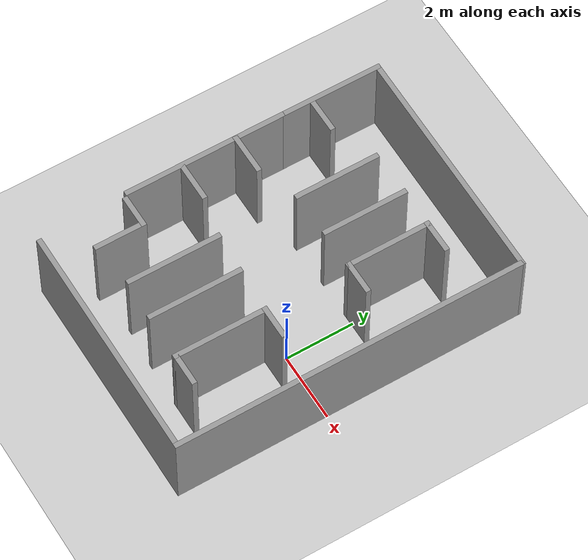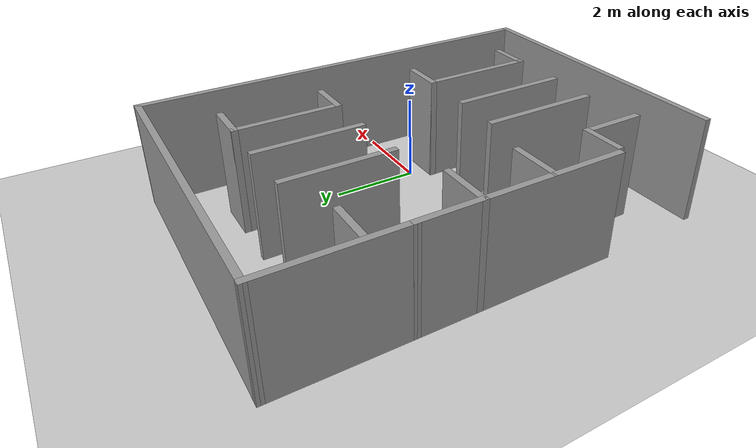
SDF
<sdf version='1.4'>
  <world name='default'>
    <!-- A global light source -->
    <include>
      <uri>model://sun</uri>
    </include>

    <!-- A ground plane -->
    <include>
      <uri>model://ground_plane</uri>
    </include>

    <physics type="ode">
      <real_time_update_rate>2000.0</real_time_update_rate>
      <max_step_size>0.002</max_step_size>
      <real_time_factor>2</real_time_factor>
      <ode>
        <solver>
          <type>quick</type>
          <iters>150</iters>
          <precon_iters>0</precon_iters>
          <sor>1.400000</sor>
          <use_dynamic_moi_rescaling>1</use_dynamic_moi_rescaling>
        </solver>
        <constraints>
          <cfm>0.00001</cfm>
          <erp>0.2</erp>
          <contact_max_correcting_vel>2000.000000</contact_max_correcting_vel>
          <contact_surface_layer>0.01000</contact_surface_layer>
        </constraints>
      </ode>
    </physics>

    <include>
        <uri>model://turtlebot3_rs2warehouse</uri>
    </include>

    <scene>
      <ambient>0.4 0.4 0.4 1</ambient>
      <background>0.7 0.7 0.7 1</background>
      <shadows>true</shadows>
    </scene>

    <gui fullscreen='0'>
      <camera name='user_camera'>
        <pose>0.0 0.0 17.0 0 1.5708 0</pose>
        <view_controller>orbit</view_controller>
      </camera>
    </gui>
  </world>
</sdf>

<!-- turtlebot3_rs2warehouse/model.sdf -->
<sdf version='1.6'>
  <model name='warehouse'>
    <pose frame=''>-1.58128 0.77442 0 0 -0 0</pose>
    <link name='Wall_0'>
      <collision name='Wall_0_Collision'>
        <geometry>
          <box>
            <size>7 0.15 2.5</size>
          </box>
        </geometry>
        <pose frame=''>0 0 1.25 0 -0 0</pose>
      </collision>
      <visual name='Wall_0_Visual'>
        <pose frame=''>0 0 1.25 0 -0 0</pose>
        <geometry>
          <box>
            <size>7 0.15 2.5</size>
          </box>
        </geometry>
        <material>
          <script>
            <uri>file://media/materials/scripts/gazebo.material</uri>
            <name>Gazebo/Grey</name>
          </script>
          <ambient>1 1 1 1</ambient>
        </material>
        <meta>
          <layer>0</layer>
        </meta>
      </visual>
      <pose frame=''>0.066277 -5.08442 0 0 -0 3.14159</pose>
    </link>
    <link name='Wall_10'>
      <collision name='Wall_10_Collision'>
        <geometry>
          <box>
            <size>1.25 0.15 2.5</size>
          </box>
        </geometry>
        <pose frame=''>0 0 1.25 0 -0 0</pose>
      </collision>
      <visual name='Wall_10_Visual'>
        <pose frame=''>0 0 1.25 0 -0 0</pose>
        <geometry>
          <box>
            <size>1.25 0.15 2.5</size>
          </box>
        </geometry>
        <material>
          <script>
            <uri>file://media/materials/scripts/gazebo.material</uri>
            <name>Gazebo/Grey</name>
          </script>
          <ambient>1 1 1 1</ambient>
        </material>
        <meta>
          <layer>0</layer>
        </meta>
      </visual>
      <pose frame=''>-2.94179 -0.847203 0 0 -0 0</pose>
    </link>
    <link name='Wall_12'>
      <collision name='Wall_12_Collision'>
        <geometry>
          <box>
            <size>2.5 0.15 2.5</size>
          </box>
        </geometry>
        <pose frame=''>0 0 1.25 0 -0 0</pose>
      </collision>
      <visual name='Wall_12_Visual'>
        <pose frame=''>0 0 1.25 0 -0 0</pose>
        <geometry>
          <box>
            <size>2.5 0.15 2.5</size>
          </box>
        </geometry>
        <material>
          <script>
            <uri>file://media/materials/scripts/gazebo.material</uri>
            <name>Gazebo/Grey</name>
          </script>
          <ambient>1 1 1 1</ambient>
        </material>
        <meta>
          <layer>0</layer>
        </meta>
      </visual>
      <pose frame=''>-1.14537 2.38746 0 0 -0 -1.5708</pose>
    </link>
    <link name='Wall_14'>
      <collision name='Wall_14_Collision'>
        <geometry>
          <box>
            <size>2.5 0.15 2.5</size>
          </box>
        </geometry>
        <pose frame=''>0 0 1.25 0 -0 0</pose>
      </collision>
      <visual name='Wall_14_Visual'>
        <pose frame=''>0 0 1.25 0 -0 0</pose>
        <geometry>
          <box>
            <size>2.5 0.15 2.5</size>
          </box>
        </geometry>
        <material>
          <script>
            <uri>file://media/materials/scripts/gazebo.material</uri>
            <name>Gazebo/Grey</name>
          </script>
          <ambient>1 1 1 1</ambient>
        </material>
        <meta>
          <layer>0</layer>
        </meta>
      </visual>
      <pose frame=''>0.14921 2.42791 0 0 -0 -1.5708</pose>
    </link>
    <link name='Wall_16'>
      <collision name='Wall_16_Collision'>
        <geometry>
          <box>
            <size>2.5 0.15 2.5</size>
          </box>
        </geometry>
        <pose frame=''>0 0 1.25 0 -0 0</pose>
      </collision>
      <visual name='Wall_16_Visual'>
        <pose frame=''>0 0 1.25 0 -0 0</pose>
        <geometry>
          <box>
            <size>2.5 0.15 2.5</size>
          </box>
        </geometry>
        <material>
          <script>
            <uri>file://media/materials/scripts/gazebo.material</uri>
            <name>Gazebo/Grey</name>
          </script>
          <ambient>1 1 1 1</ambient>
        </material>
        <meta>
          <layer>0</layer>
        </meta>
      </visual>
      <pose frame=''>1.28197 2.42791 0 0 -0 -1.5708</pose>
    </link>
    <link name='Wall_25'>
      <collision name='Wall_25_Collision'>
        <geometry>
          <box>
            <size>1 0.15 2.5</size>
          </box>
        </geometry>
        <pose frame=''>0 0 1.25 0 -0 0</pose>
      </collision>
      <visual name='Wall_25_Visual'>
        <pose frame=''>0 0 1.25 0 -0 0</pose>
        <geometry>
          <box>
            <size>1 0.15 2.5</size>
          </box>
        </geometry>
        <material>
          <script>
            <uri>file://media/materials/scripts/gazebo.material</uri>
            <name>Gazebo/Grey</name>
          </script>
          <ambient>1 1 1 1</ambient>
        </material>
        <meta>
          <layer>0</layer>
        </meta>
      </visual>
      <pose frame=''>-2.90497 -2.58679 0 0 -0 0</pose>
    </link>
    <link name='Wall_26'>
      <collision name='Wall_26_Collision'>
        <geometry>
          <box>
            <size>1.5 0.15 2.5</size>
          </box>
        </geometry>
        <pose frame=''>0 0 1.25 0 -0 0</pose>
      </collision>
      <visual name='Wall_26_Visual'>
        <pose frame=''>0 0 1.25 0 -0 0</pose>
        <geometry>
          <box>
            <size>1.5 0.15 2.5</size>
          </box>
        </geometry>
        <material>
          <script>
            <uri>file://media/materials/scripts/gazebo.material</uri>
            <name>Gazebo/Grey</name>
          </script>
          <ambient>1 1 1 1</ambient>
        </material>
        <meta>
          <layer>0</layer>
        </meta>
      </visual>
      <pose frame=''>-2.47997 -3.26179 0 0 -0 -1.5708</pose>
    </link>
    <link name='Wall_28'>
      <collision name='Wall_28_Collision'>
        <geometry>
          <box>
            <size>4.75 0.15 2.5</size>
          </box>
        </geometry>
        <pose frame=''>0 0 1.25 0 -0 0</pose>
      </collision>
      <visual name='Wall_28_Visual'>
        <pose frame=''>0 0 1.25 0 -0 0</pose>
        <geometry>
          <box>
            <size>4.75 0.15 2.5</size>
          </box>
        </geometry>
        <material>
          <script>
            <uri>file://media/materials/scripts/gazebo.material</uri>
            <name>Gazebo/Grey</name>
          </script>
          <ambient>1 1 1 1</ambient>
        </material>
        <meta>
          <layer>0</layer>
        </meta>
      </visual>
      <pose frame=''>-3.49179 -0.15349 0 0 -0 -1.5708</pose>
    </link>
    <link name='Wall_30'>
      <collision name='Wall_30_Collision'>
        <geometry>
          <box>
            <size>2.75 0.15 2.5</size>
          </box>
        </geometry>
        <pose frame=''>0 0 1.25 0 -0 0</pose>
      </collision>
      <visual name='Wall_30_Visual'>
        <pose frame=''>0 0 1.25 0 -0 0</pose>
        <geometry>
          <box>
            <size>2.75 0.15 2.5</size>
          </box>
        </geometry>
        <material>
          <script>
            <uri>file://media/materials/scripts/gazebo.material</uri>
            <name>Gazebo/Grey</name>
          </script>
          <ambient>1 1 1 1</ambient>
        </material>
        <meta>
          <layer>0</layer>
        </meta>
      </visual>
      <pose frame=''>-1.16972 -2.43899 0 0 -0 -1.5708</pose>
    </link>
    <link name='Wall_32'>
      <collision name='Wall_32_Collision'>
        <geometry>
          <box>
            <size>2.75 0.15 2.5</size>
          </box>
        </geometry>
        <pose frame=''>0 0 1.25 0 -0 0</pose>
      </collision>
      <visual name='Wall_32_Visual'>
        <pose frame=''>0 0 1.25 0 -0 0</pose>
        <geometry>
          <box>
            <size>2.75 0.15 2.5</size>
          </box>
        </geometry>
        <material>
          <script>
            <uri>file://media/materials/scripts/gazebo.material</uri>
            <name>Gazebo/Grey</name>
          </script>
          <ambient>1 1 1 1</ambient>
        </material>
        <meta>
          <layer>0</layer>
        </meta>
      </visual>
      <pose frame=''>-0.007293 -2.50017 0 0 -0 -1.5708</pose>
    </link>
    <link name='Wall_34'>
      <collision name='Wall_34_Collision'>
        <geometry>
          <box>
            <size>2.75 0.15 2.5</size>
          </box>
        </geometry>
        <pose frame=''>0 0 1.25 0 -0 0</pose>
      </collision>
      <visual name='Wall_34_Visual'>
        <pose frame=''>0 0 1.25 0 -0 0</pose>
        <geometry>
          <box>
            <size>2.75 0.15 2.5</size>
          </box>
        </geometry>
        <material>
          <script>
            <uri>file://media/materials/scripts/gazebo.material</uri>
            <name>Gazebo/Grey</name>
          </script>
          <ambient>1 1 1 1</ambient>
        </material>
        <meta>
          <layer>0</layer>
        </meta>
      </visual>
      <pose frame=''>1.30809 -2.53076 0 0 -0 -1.5708</pose>
    </link>
    <link name='Wall_36'>
      <collision name='Wall_36_Collision'>
        <geometry>
          <box>
            <size>1 0.15 2.5</size>
          </box>
        </geometry>
        <pose frame=''>0 0 1.25 0 -0 0</pose>
      </collision>
      <visual name='Wall_36_Visual'>
        <pose frame=''>0 0 1.25 0 -0 0</pose>
        <geometry>
          <box>
            <size>1 0.15 2.5</size>
          </box>
        </geometry>
        <material>
          <script>
            <uri>file://media/materials/scripts/gazebo.material</uri>
            <name>Gazebo/Grey</name>
          </script>
          <ambient>1 1 1 1</ambient>
        </material>
        <meta>
          <layer>0</layer>
        </meta>
      </visual>
      <pose frame=''>1.73309 -1.23076 0 0 -0 0</pose>
    </link>
    <link name='Wall_39'>
      <collision name='Wall_39_Collision'>
        <geometry>
          <box>
            <size>1 0.15 2.5</size>
          </box>
        </geometry>
        <pose frame=''>0 0 1.25 0 -0 0</pose>
      </collision>
      <visual name='Wall_39_Visual'>
        <pose frame=''>0 0 1.25 0 -0 0</pose>
        <geometry>
          <box>
            <size>1 0.15 2.5</size>
          </box>
        </geometry>
        <material>
          <script>
            <uri>file://media/materials/scripts/gazebo.material</uri>
            <name>Gazebo/Grey</name>
          </script>
          <ambient>1 1 1 1</ambient>
        </material>
        <meta>
          <layer>0</layer>
        </meta>
      </visual>
      <pose frame=''>1.73309 -3.83076 0 0 -0 0</pose>
    </link>
    <link name='Wall_41'>
      <collision name='Wall_41_Collision'>
        <geometry>
          <box>
            <size>1 0.15 2.5</size>
          </box>
        </geometry>
        <pose frame=''>0 0 1.25 0 -0 0</pose>
      </collision>
      <visual name='Wall_41_Visual'>
        <pose frame=''>0 0 1.25 0 -0 0</pose>
        <geometry>
          <box>
            <size>1 0.15 2.5</size>
          </box>
        </geometry>
        <material>
          <script>
            <uri>file://media/materials/scripts/gazebo.material</uri>
            <name>Gazebo/Grey</name>
          </script>
          <ambient>1 1 1 1</ambient>
        </material>
        <meta>
          <layer>0</layer>
        </meta>
      </visual>
      <pose frame=''>1.70697 1.25291 0 0 -0 0</pose>
    </link>
    <link name='Wall_43'>
      <collision name='Wall_43_Collision'>
        <geometry>
          <box>
            <size>1 0.15 2.5</size>
          </box>
        </geometry>
        <pose frame=''>0 0 1.25 0 -0 0</pose>
      </collision>
      <visual name='Wall_43_Visual'>
        <pose frame=''>0 0 1.25 0 -0 0</pose>
        <geometry>
          <box>
            <size>1 0.15 2.5</size>
          </box>
        </geometry>
        <material>
          <script>
            <uri>file://media/materials/scripts/gazebo.material</uri>
            <name>Gazebo/Grey</name>
          </script>
          <ambient>1 1 1 1</ambient>
        </material>
        <meta>
          <layer>0</layer>
        </meta>
      </visual>
      <pose frame=''>1.70697 3.60291 0 0 -0 0</pose>
    </link>
    <link name='Wall_45'>
      <collision name='Wall_45_Collision'>
        <geometry>
          <box>
            <size>3.08719 0.15 2.5</size>
          </box>
        </geometry>
        <pose frame=''>0 0 1.25 0 -0 0</pose>
      </collision>
      <visual name='Wall_45_Visual'>
        <pose frame=''>0 0 1.25 0 -0 0</pose>
        <geometry>
          <box>
            <size>3.08719 0.15 2.5</size>
          </box>
        </geometry>
        <material>
          <script>
            <uri>file://media/materials/scripts/gazebo.material</uri>
            <name>Gazebo/Grey</name>
          </script>
          <ambient>1 1 1 1</ambient>
        </material>
        <meta>
          <layer>0</layer>
        </meta>
      </visual>
      <pose frame=''>-3.4876 3.6151 0 0 -0 -1.57365</pose>
    </link>
    <link name='Wall_47'>
      <collision name='Wall_47_Collision'>
        <geometry>
          <box>
            <size>1 0.15 2.5</size>
          </box>
        </geometry>
        <pose frame=''>0 0 1.25 0 -0 0</pose>
      </collision>
      <visual name='Wall_47_Visual'>
        <pose frame=''>0 0 1.25 0 -0 0</pose>
        <geometry>
          <box>
            <size>1 0.15 2.5</size>
          </box>
        </geometry>
        <material>
          <script>
            <uri>file://media/materials/scripts/gazebo.material</uri>
            <name>Gazebo/Grey</name>
          </script>
          <ambient>1 1 1 1</ambient>
        </material>
        <meta>
          <layer>0</layer>
        </meta>
      </visual>
      <pose frame=''>-2.91663 3.05187 0 0 -0 0</pose>
    </link>
    <link name='Wall_5'>
      <collision name='Wall_5_Collision'>
        <geometry>
          <box>
            <size>10.25 0.15 2.5</size>
          </box>
        </geometry>
        <pose frame=''>0 0 1.25 0 -0 0</pose>
      </collision>
      <visual name='Wall_5_Visual'>
        <pose frame=''>0 0 1.25 0 -0 0</pose>
        <geometry>
          <box>
            <size>10.25 0.15 2.5</size>
          </box>
        </geometry>
        <material>
          <script>
            <uri>file://media/materials/scripts/gazebo.material</uri>
            <name>Gazebo/Grey</name>
          </script>
          <ambient>1 1 1 1</ambient>
        </material>
        <meta>
          <layer>0</layer>
        </meta>
      </visual>
      <pose frame=''>3.49128 -0.03442 0 0 -0 1.5708</pose>
    </link>
    <link name='Wall_6'>
      <collision name='Wall_6_Collision'>
        <geometry>
          <box>
            <size>7.12502 0.15 2.5</size>
          </box>
        </geometry>
        <pose frame=''>0 0 1.25 0 -0 0</pose>
      </collision>
      <visual name='Wall_6_Visual'>
        <pose frame=''>0 0 1.25 0 -0 0</pose>
        <geometry>
          <box>
            <size>7.12502 0.15 2.5</size>
          </box>
        </geometry>
        <material>
          <script>
            <uri>file://media/materials/scripts/gazebo.material</uri>
            <name>Gazebo/Grey</name>
          </script>
          <ambient>1 1 1 1</ambient>
        </material>
        <meta>
          <layer>0</layer>
        </meta>
      </visual>
      <pose frame=''>0.00393 5.04964 0 0 -0 3.13183</pose>
    </link>
    <link name='Wall_8'>
      <collision name='Wall_8_Collision'>
        <geometry>
          <box>
            <size>1.25 0.15 2.5</size>
          </box>
        </geometry>
        <pose frame=''>0 0 1.25 0 -0 0</pose>
      </collision>
      <visual name='Wall_8_Visual'>
        <pose frame=''>0 0 1.25 0 -0 0</pose>
        <geometry>
          <box>
            <size>1.25 0.15 2.5</size>
          </box>
        </geometry>
        <material>
          <script>
            <uri>file://media/materials/scripts/gazebo.material</uri>
            <name>Gazebo/Grey</name>
          </script>
          <ambient>1 1 1 1</ambient>
        </material>
        <meta>
          <layer>0</layer>
        </meta>
      </visual>
      <pose frame=''>-2.94179 0.77102 0 0 -0 0</pose>
    </link>
    <static>1</static>
  </model>
</sdf>
